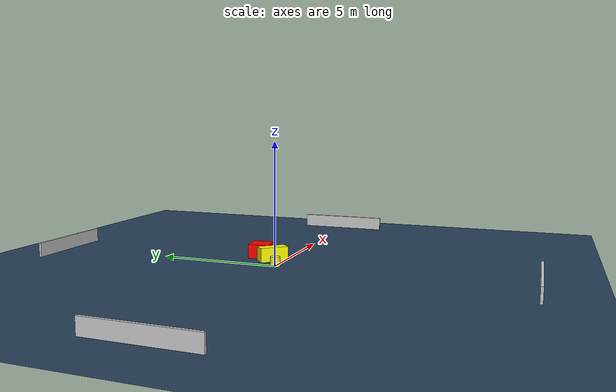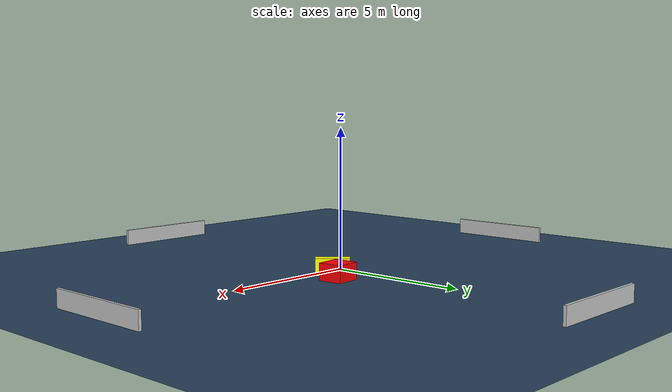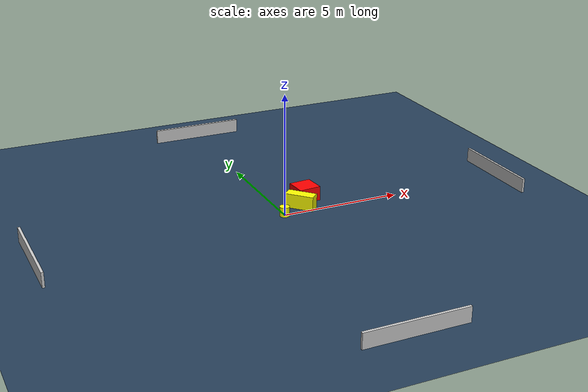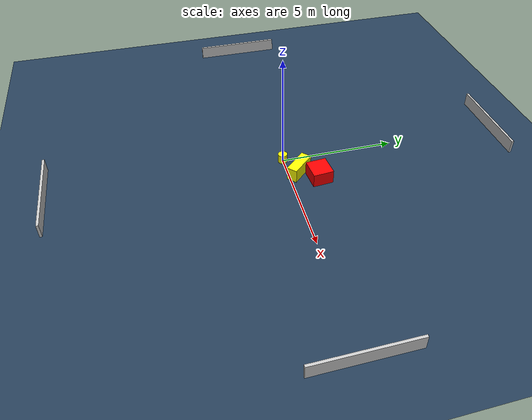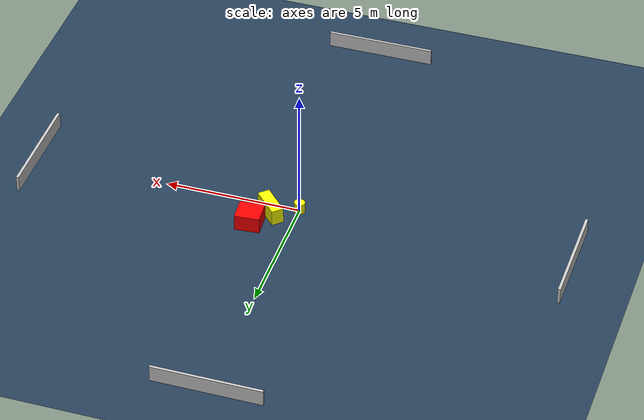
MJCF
<?xml version="1.0" ?>
<mujoco model="generated_environment">
  <option timestep="0.01" integrator="RK4" cone="elliptic"/>
  <default>
    <geom density="1"/>
  </default>
  <asset>
    <texture builtin="gradient" height="3072" name="skybox" rgb1="0.3 0.5 0.7" rgb2="0 0 0" type="skybox" width="512"/>
    <texture builtin="checker" height="300" name="groundplane" rgb1="0.2 0.3 0.4" rgb2="0.1 0.2 0.3" type="2d" width="300"/>
    <material name="groundplane" reflectance="0.2" texrepeat="5 5" texture="groundplane"/>
  </asset>
  <worldbody>
    <light dir="0 0 -1" directional="true" pos="0 0 1.5"/>
    <geom condim="3" friction="0.5 0.005 0.001" material="groundplane" name="floor" pos="0 0 0" size="0 0 0.05" type="plane"/>
    <body name="walls">
      <geom name="wall_1" condim="4" pos="-10.0 0.0 0.3" rgba="0.800000011920929 0.800000011920929 0.800000011920929 1.0" size="0.05 2.0 0.3" type="box"/>
      <geom name="wall_2" condim="4" pos="10.0 0.0 0.3" rgba="0.800000011920929 0.800000011920929 0.800000011920929 1.0" size="0.05 2.0 0.3" type="box"/>
      <geom name="wall_3" condim="4" pos="0.0 -10.0 0.3" rgba="0.800000011920929 0.800000011920929 0.800000011920929 1.0" size="2.0 0.05 0.3" type="box"/>
      <geom name="wall_4" condim="4" pos="0.0 10.0 0.3" rgba="0.800000011920929 0.800000011920929 0.800000011920929 1.0" size="2.0 0.05 0.3" type="box"/>
    </body>
    <body name="robot">
      <joint name="joint_x" type="slide" pos="0 0 0" axis="1 0 0"/>
      <joint name="joint_y" type="slide" pos="0 0 0" axis="0 1 0"/>
      <geom name="robot" type="cylinder" pos="0.0 0.0 0.2" size="0.2 0.2 0.0" mass="5.0" friction="1.0 0.005 0.0001" condim="4" rgba="1.0 1.0 0.0 1.0"/>
    </body>
    <body name="obstacle_1_movable">
      <geom name="obstacle_1_movable" condim="4" pos="0.9346174583604417 0.4741624126421035 0.3" euler="0 0 133.0485104698413" friction="0.0 0.005 0.001" rgba="1.0 1.0 0.0 1.0" size="0.6005651837746147 0.2267389181045042 0.3" type="box" mass="0.1"/>
      <joint type="free"/>
    </body>
    <body name="obstacle_2_static">
      <geom name="obstacle_2_static" condim="4" pos="1.4677448181293096 1.213998728777327 0.3" euler="0 0 274.8177314596834" friction="0.0 0.005 0.001" rgba="1.0 0.0 0.0 1.0" size="0.44137765903573273 0.45922740418722113 0.3" type="box"/>
    </body>
  </worldbody>
  <actuator>
    <motor name="actuator_x" joint="joint_x" gear="1" ctrlrange="-1 1"/>
    <motor name="actuator_y" joint="joint_y" gear="1" ctrlrange="-1 1"/>
  </actuator>
</mujoco>
